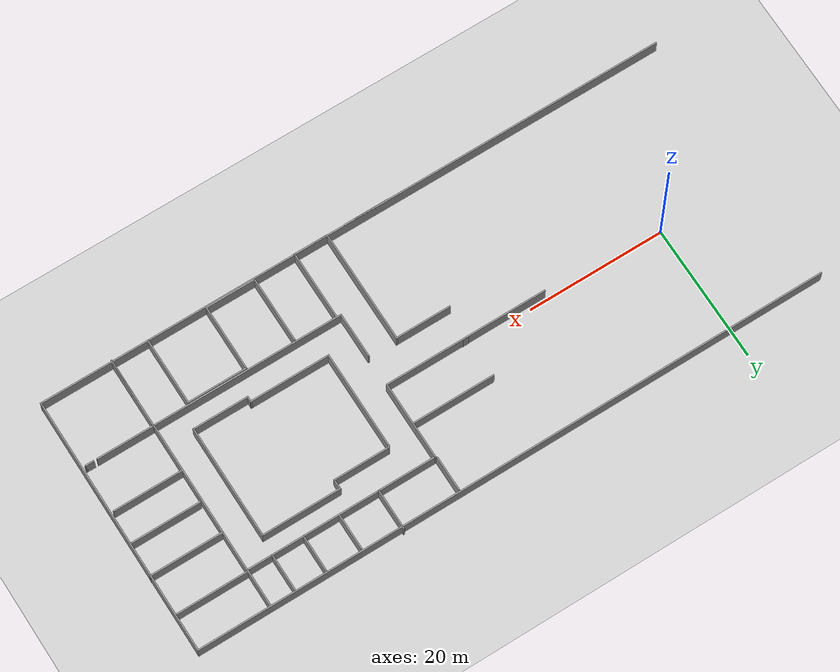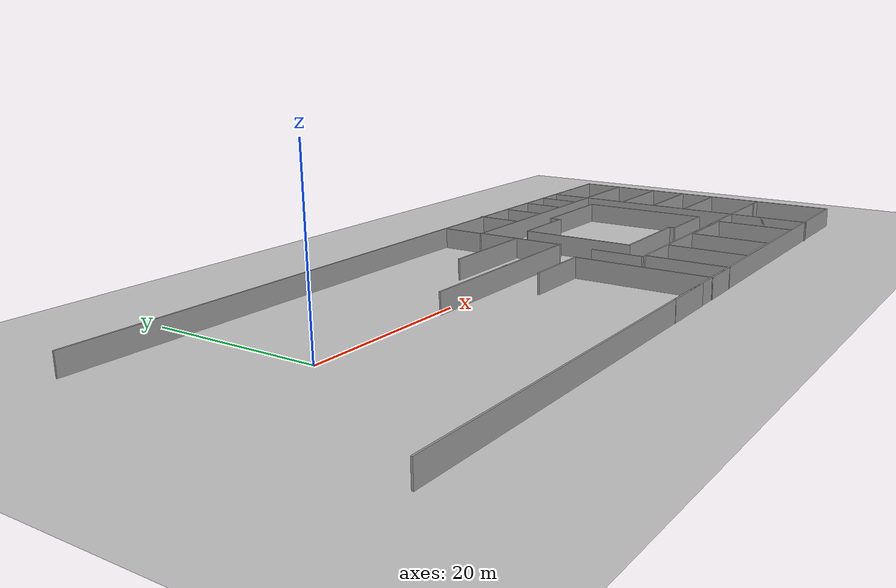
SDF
<sdf version="1.4">
 <world name="default">
  <model name="ground_plane">
   <static>1</static>
   <link name="link">
    <collision name="collision">
     <geometry><plane><normal>0 0 1</normal><size>100 100</size></plane></geometry>
     <surface><friction><ode><mu>100</mu><mu2>50</mu2></ode></friction></surface>
    </collision>
    <visual name="visual">
     <cast_shadows>0</cast_shadows>
     <geometry><plane><normal>0 0 1</normal><size>100 100</size></plane></geometry>
     <material>
      <script><uri>file://media/materials/scripts/gazebo.material</uri><name>Gazebo/Grey</name></script>
     </material>
    </visual>
    <velocity_decay><linear>0</linear><angular>0</angular></velocity_decay>
   </link>
  </model>
  <model name="whittemore6fl">
   <link name="Wall_107">
    <collision name="Wall_107_Collision">
     <geometry><box><size>5.19621 0.2 2.5</size></box></geometry>
     <pose>0 0 1.25 0 -0 0</pose>
    </collision>
    <visual name="Wall_107_Visual">
     <pose>0 0 1.25 0 -0 0</pose>
     <geometry><box><size>5.19621 0.2 2.5</size></box></geometry>
     <material>
      <script><uri>file://media/materials/scripts/gazebo.material</uri><name>Gazebo/Grey</name></script>
     </material>
    </visual>
    <velocity_decay><linear>0</linear><angular>0</angular></velocity_decay>
    <pose>32.9893 13.8078 0 0 -0 1.5708</pose>
   </link>
   <link name="Wall_110">
    <collision name="Wall_110_Collision">
     <geometry><box><size>0.847657 0.2 2.5</size></box></geometry>
     <pose>0 0 1.25 0 -0 0</pose>
    </collision>
    <visual name="Wall_110_Visual">
     <pose>0 0 1.25 0 -0 0</pose>
     <geometry><box><size>0.847657 0.2 2.5</size></box></geometry>
     <material>
      <script><uri>file://media/materials/scripts/gazebo.material</uri><name>Gazebo/Grey</name></script>
     </material>
    </visual>
    <velocity_decay><linear>0</linear><angular>0</angular></velocity_decay>
    <pose>21.3777 -0.255643 0 0 -0 0</pose>
   </link>
   <link name="Wall_112">
    <collision name="Wall_112_Collision">
     <geometry><box><size>12.0429 0.2 2.5</size></box></geometry>
     <pose>0 0 1.25 0 -0 0</pose>
    </collision>
    <visual name="Wall_112_Visual">
     <pose>0 0 1.25 0 -0 0</pose>
     <geometry><box><size>12.0429 0.2 2.5</size></box></geometry>
     <material>
      <script><uri>file://media/materials/scripts/gazebo.material</uri><name>Gazebo/Grey</name></script>
     </material>
    </visual>
    <velocity_decay><linear>0</linear><angular>0</angular></velocity_decay>
    <pose>27.0679 5.85084 0 0 -0 3.14159</pose>
   </link>
   <link name="Wall_135">
    <collision name="Wall_135_Collision">
     <geometry><box><size>6.86161 0.2 2.5</size></box></geometry>
     <pose>0 0 1.25 0 -0 0</pose>
    </collision>
    <visual name="Wall_135_Visual">
     <pose>0 0 1.25 0 -0 0</pose>
     <geometry><box><size>6.86161 0.2 2.5</size></box></geometry>
     <material>
      <script><uri>file://media/materials/scripts/gazebo.material</uri><name>Gazebo/Grey</name></script>
     </material>
    </visual>
    <velocity_decay><linear>0</linear><angular>0</angular></velocity_decay>
    <pose>22.7617 -21.6193 0 0 -0 3.14159</pose>
   </link>
   <link name="Wall_138">
    <collision name="Wall_138_Collision">
     <geometry><box><size>8.15693 0.2 2.5</size></box></geometry>
     <pose>0 0 1.25 0 -0 0</pose>
    </collision>
    <visual name="Wall_138_Visual">
     <pose>0 0 1.25 0 -0 0</pose>
     <geometry><box><size>8.15693 0.2 2.5</size></box></geometry>
     <material>
      <script><uri>file://media/materials/scripts/gazebo.material</uri><name>Gazebo/Grey</name></script>
     </material>
    </visual>
    <velocity_decay><linear>0</linear><angular>0</angular></velocity_decay>
    <pose>24.7972 -4.96531 0 0 -0 0</pose>
   </link>
   <link name="Wall_139">
    <collision name="Wall_139_Collision">
     <geometry><box><size>16.854 0.2 2.5</size></box></geometry>
     <pose>0 0 1.25 0 -0 0</pose>
    </collision>
    <visual name="Wall_139_Visual">
     <pose>0 0 1.25 0 -0 0</pose>
     <geometry><box><size>16.854 0.2 2.5</size></box></geometry>
     <material>
      <script><uri>file://media/materials/scripts/gazebo.material</uri><name>Gazebo/Grey</name></script>
     </material>
    </visual>
    <velocity_decay><linear>0</linear><angular>0</angular></velocity_decay>
    <pose>28.7757 -13.2923 0 0 0 -1.5708</pose>
   </link>
   <link name="Wall_140">
    <collision name="Wall_140_Collision">
     <geometry><box><size>5.10369 0.2 2.5</size></box></geometry>
     <pose>0 0 1.25 0 -0 0</pose>
    </collision>
    <visual name="Wall_140_Visual">
     <pose>0 0 1.25 0 -0 0</pose>
     <geometry><box><size>5.10369 0.2 2.5</size></box></geometry>
     <material>
      <script><uri>file://media/materials/scripts/gazebo.material</uri><name>Gazebo/Grey</name></script>
     </material>
    </visual>
    <velocity_decay><linear>0</linear><angular>0</angular></velocity_decay>
    <pose>31.2275 -21.6193 0 0 -0 0</pose>
   </link>
   <link name="Wall_141">
    <collision name="Wall_141_Collision">
     <geometry><box><size>10.1924 0.2 2.5</size></box></geometry>
     <pose>0 0 1.25 0 -0 0</pose>
    </collision>
    <visual name="Wall_141_Visual">
     <pose>0 0 1.25 0 -0 0</pose>
     <geometry><box><size>10.1924 0.2 2.5</size></box></geometry>
     <material>
      <script><uri>file://media/materials/scripts/gazebo.material</uri><name>Gazebo/Grey</name></script>
     </material>
    </visual>
    <velocity_decay><linear>0</linear><angular>0</angular></velocity_decay>
    <pose>33.6794 -16.6231 0 0 -0 1.5708</pose>
   </link>
   <link name="Wall_142">
    <collision name="Wall_142_Collision">
     <geometry><box><size>0.21 0.2 2.5</size></box></geometry>
     <pose>0 0 1.25 0 -0 0</pose>
    </collision>
    <visual name="Wall_142_Visual">
     <pose>0 0 1.25 0 -0 0</pose>
     <geometry><box><size>0.21 0.2 2.5</size></box></geometry>
     <material>
      <script><uri>file://media/materials/scripts/gazebo.material</uri><name>Gazebo/Grey</name></script>
     </material>
    </visual>
    <velocity_decay><linear>0</linear><angular>0</angular></velocity_decay>
    <pose>33.6844 -11.6269 0 0 -0 0</pose>
   </link>
   <link name="Wall_144">
    <collision name="Wall_144_Collision">
     <geometry><box><size>10.022 0.2 2.5</size></box></geometry>
     <pose>0 0 1.25 0 -0 0</pose>
    </collision>
    <visual name="Wall_144_Visual">
     <pose>0 0 1.25 0 -0 0</pose>
     <geometry><box><size>10.022 0.2 2.5</size></box></geometry>
     <material>
      <script><uri>file://media/materials/scripts/gazebo.material</uri><name>Gazebo/Grey</name></script>
     </material>
    </visual>
    <velocity_decay><linear>0</linear><angular>0</angular></velocity_decay>
    <pose>60.8642 -16.8211 0 0 0 -1.5708</pose>
   </link>
   <link name="Wall_145">
    <collision name="Wall_145_Collision">
     <geometry><box><size>10.5209 0.2 2.5</size></box></geometry>
     <pose>0 0 1.25 0 -0 0</pose>
    </collision>
    <visual name="Wall_145_Visual">
     <pose>0 0 1.25 0 -0 0</pose>
     <geometry><box><size>10.5209 0.2 2.5</size></box></geometry>
     <material>
      <script><uri>file://media/materials/scripts/gazebo.material</uri><name>Gazebo/Grey</name></script>
     </material>
    </visual>
    <velocity_decay><linear>0</linear><angular>0</angular></velocity_decay>
    <pose>60.8642 -16.5717 0 0 -0 1.5708</pose>
   </link>
   <link name="Wall_146">
    <collision name="Wall_146_Collision">
     <geometry><box><size>8.40067 0.2 2.5</size></box></geometry>
     <pose>0 0 1.25 0 -0 0</pose>
    </collision>
    <visual name="Wall_146_Visual">
     <pose>0 0 1.25 0 -0 0</pose>
     <geometry><box><size>8.40067 0.2 2.5</size></box></geometry>
     <material>
      <script><uri>file://media/materials/scripts/gazebo.material</uri><name>Gazebo/Grey</name></script>
     </material>
    </visual>
    <velocity_decay><linear>0</linear><angular>0</angular></velocity_decay>
    <pose>64.9645 -11.4113 0 0 -0 0</pose>
   </link>
   <link name="Wall_167">
    <collision name="Wall_167_Collision">
     <geometry><box><size>1.32572 0.2 2.5</size></box></geometry>
     <pose>0 0 1.25 0 -0 0</pose>
    </collision>
    <visual name="Wall_167_Visual">
     <pose>0 0 1.25 0 -0 0</pose>
     <geometry><box><size>1.32572 0.2 2.5</size></box></geometry>
     <material>
      <script><uri>file://media/materials/scripts/gazebo.material</uri><name>Gazebo/Grey</name></script>
     </material>
    </visual>
    <velocity_decay><linear>0</linear><angular>0</angular></velocity_decay>
    <pose>70.2163 -11.4341 0 0 -0 0</pose>
   </link>
   <link name="Wall_168">
    <collision name="Wall_168_Collision">
     <geometry><box><size>0.21 0.2 2.5</size></box></geometry>
     <pose>0 0 1.25 0 -0 0</pose>
    </collision>
    <visual name="Wall_168_Visual">
     <pose>0 0 1.25 0 -0 0</pose>
     <geometry><box><size>0.21 0.2 2.5</size></box></geometry>
     <material>
      <script><uri>file://media/materials/scripts/gazebo.material</uri><name>Gazebo/Grey</name></script>
     </material>
    </visual>
    <velocity_decay><linear>0</linear><angular>0</angular></velocity_decay>
    <pose>70.7842 -11.4341 0 0 -0 0</pose>
   </link>
   <link name="Wall_170">
    <collision name="Wall_170_Collision">
     <geometry><box><size>9.90934 0.2 2.5</size></box></geometry>
     <pose>0 0 1.25 0 -0 0</pose>
    </collision>
    <visual name="Wall_170_Visual">
     <pose>0 0 1.25 0 -0 0</pose>
     <geometry><box><size>9.90934 0.2 2.5</size></box></geometry>
     <material>
      <script><uri>file://media/materials/scripts/gazebo.material</uri><name>Gazebo/Grey</name></script>
     </material>
    </visual>
    <velocity_decay><linear>0</linear><angular>0</angular></velocity_decay>
    <pose>39.8219 -16.5702 0 0 0 -1.5708</pose>
   </link>
   <link name="Wall_171">
    <collision name="Wall_171_Collision">
     <geometry><box><size>7.37647 0.2 2.5</size></box></geometry>
     <pose>0 0 1.25 0 -0 0</pose>
    </collision>
    <visual name="Wall_171_Visual">
     <pose>0 0 1.25 0 -0 0</pose>
     <geometry><box><size>7.37647 0.2 2.5</size></box></geometry>
     <material>
      <script><uri>file://media/materials/scripts/gazebo.material</uri><name>Gazebo/Grey</name></script>
     </material>
    </visual>
    <velocity_decay><linear>0</linear><angular>0</angular></velocity_decay>
    <pose>43.4101 -21.4249 0 0 -0 0</pose>
   </link>
   <link name="Wall_172">
    <collision name="Wall_172_Collision">
     <geometry><box><size>9.90934 0.2 2.5</size></box></geometry>
     <pose>0 0 1.25 0 -0 0</pose>
    </collision>
    <visual name="Wall_172_Visual">
     <pose>0 0 1.25 0 -0 0</pose>
     <geometry><box><size>9.90934 0.2 2.5</size></box></geometry>
     <material>
      <script><uri>file://media/materials/scripts/gazebo.material</uri><name>Gazebo/Grey</name></script>
     </material>
    </visual>
    <velocity_decay><linear>0</linear><angular>0</angular></velocity_decay>
    <pose>46.9983 -16.5702 0 0 -0 1.5708</pose>
   </link>
   <link name="Wall_173">
    <collision name="Wall_173_Collision">
     <geometry><box><size>8.78362 0.2 2.5</size></box></geometry>
     <pose>0 0 1.25 0 -0 0</pose>
    </collision>
    <visual name="Wall_173_Visual">
     <pose>0 0 1.25 0 -0 0</pose>
     <geometry><box><size>8.78362 0.2 2.5</size></box></geometry>
     <material>
      <script><uri>file://media/materials/scripts/gazebo.material</uri><name>Gazebo/Grey</name></script>
     </material>
    </visual>
    <velocity_decay><linear>0</linear><angular>0</angular></velocity_decay>
    <pose>51.2902 -11.7156 0 0 -0 0</pose>
   </link>
   <link name="Wall_174">
    <collision name="Wall_174_Collision">
     <geometry><box><size>10.0501 0.2 2.5</size></box></geometry>
     <pose>0 0 1.25 0 -0 0</pose>
    </collision>
    <visual name="Wall_174_Visual">
     <pose>0 0 1.25 0 -0 0</pose>
     <geometry><box><size>10.0501 0.2 2.5</size></box></geometry>
     <material>
      <script><uri>file://media/materials/scripts/gazebo.material</uri><name>Gazebo/Grey</name></script>
     </material>
    </visual>
    <velocity_decay><linear>0</linear><angular>0</angular></velocity_decay>
    <pose>55.582 -16.6406 0 0 0 -1.5708</pose>
   </link>
   <link name="Wall_180">
    <collision name="Wall_180_Collision">
     <geometry><box><size>93.1907 0.2 2.5</size></box></geometry>
     <pose>0 0 1.25 0 -0 0</pose>
    </collision>
    <visual name="Wall_180_Visual">
     <pose>0 0 1.25 0 -0 0</pose>
     <geometry><box><size>93.1907 0.2 2.5</size></box></geometry>
     <material>
      <script><uri>file://media/materials/scripts/gazebo.material</uri><name>Gazebo/Grey</name></script>
     </material>
    </visual>
    <velocity_decay><linear>0</linear><angular>0</angular></velocity_decay>
    <pose>24.8126 16.6168 0 0 -0 0</pose>
   </link>
   <link name="Wall_181">
    <collision name="Wall_181_Collision">
     <geometry><box><size>38.1483 0.2 2.5</size></box></geometry>
     <pose>0 0 1.25 0 -0 0</pose>
    </collision>
    <visual name="Wall_181_Visual">
     <pose>0 0 1.25 0 -0 0</pose>
     <geometry><box><size>38.1483 0.2 2.5</size></box></geometry>
     <material>
      <script><uri>file://media/materials/scripts/gazebo.material</uri><name>Gazebo/Grey</name></script>
     </material>
    </visual>
    <velocity_decay><linear>0</linear><angular>0</angular></velocity_decay>
    <pose>71.308 -2.35737 0 0 0 -1.5708</pose>
   </link>
   <link name="Wall_182">
    <collision name="Wall_182_Collision">
     <geometry><box><size>0.444722 0.2 2.5</size></box></geometry>
     <pose>0 0 1.25 0 -0 0</pose>
    </collision>
    <visual name="Wall_182_Visual">
     <pose>0 0 1.25 0 -0 0</pose>
     <geometry><box><size>0.444722 0.2 2.5</size></box></geometry>
     <material>
      <script><uri>file://media/materials/scripts/gazebo.material</uri><name>Gazebo/Grey</name></script>
     </material>
    </visual>
    <velocity_decay><linear>0</linear><angular>0</angular></velocity_decay>
    <pose>71.308 -21.4539 0 0 0 -1.5708</pose>
   </link>
   <link name="Wall_183">
    <collision name="Wall_183_Collision">
     <geometry><box><size>93.2461 0.2 2.5</size></box></geometry>
     <pose>0 0 1.25 0 -0 0</pose>
    </collision>
    <visual name="Wall_183_Visual">
     <pose>0 0 1.25 0 -0 0</pose>
     <geometry><box><size>93.2461 0.2 2.5</size></box></geometry>
     <material>
      <script><uri>file://media/materials/scripts/gazebo.material</uri><name>Gazebo/Grey</name></script>
     </material>
    </visual>
    <velocity_decay><linear>0</linear><angular>0</angular></velocity_decay>
    <pose>24.7849 -21.5762 0 0 -0 3.14159</pose>
   </link>
   <link name="Wall_187">
    <collision name="Wall_187_Collision">
     <geometry><box><size>5.94564 0.2 2.5</size></box></geometry>
     <pose>0 0 1.25 0 -0 0</pose>
    </collision>
    <visual name="Wall_187_Visual">
     <pose>0 0 1.25 0 -0 0</pose>
     <geometry><box><size>5.94564 0.2 2.5</size></box></geometry>
     <material>
      <script><uri>file://media/materials/scripts/gazebo.material</uri><name>Gazebo/Grey</name></script>
     </material>
    </visual>
    <velocity_decay><linear>0</linear><angular>0</angular></velocity_decay>
    <pose>41.515 14.0251 0 0 0 -1.5708</pose>
   </link>
   <link name="Wall_189">
    <collision name="Wall_189_Collision">
     <geometry><box><size>5.20084 0.2 2.5</size></box></geometry>
     <pose>0 0 1.25 0 -0 0</pose>
    </collision>
    <visual name="Wall_189_Visual">
     <pose>0 0 1.25 0 -0 0</pose>
     <geometry><box><size>5.20084 0.2 2.5</size></box></geometry>
     <material>
      <script><uri>file://media/materials/scripts/gazebo.material</uri><name>Gazebo/Grey</name></script>
     </material>
    </visual>
    <velocity_decay><linear>0</linear><angular>0</angular></velocity_decay>
    <pose>47.367 13.7591 0 0 0 -1.5708</pose>
   </link>
   <link name="Wall_191">
    <collision name="Wall_191_Collision">
     <geometry><box><size>5.41364 0.2 2.5</size></box></geometry>
     <pose>0 0 1.25 0 -0 0</pose>
    </collision>
    <visual name="Wall_191_Visual">
     <pose>0 0 1.25 0 -0 0</pose>
     <geometry><box><size>5.41364 0.2 2.5</size></box></geometry>
     <material>
      <script><uri>file://media/materials/scripts/gazebo.material</uri><name>Gazebo/Grey</name></script>
     </material>
    </visual>
    <velocity_decay><linear>0</linear><angular>0</angular></velocity_decay>
    <pose>52.5807 13.7591 0 0 0 -1.5708</pose>
   </link>
   <link name="Wall_193">
    <collision name="Wall_193_Collision">
     <geometry><box><size>5.62644 0.2 2.5</size></box></geometry>
     <pose>0 0 1.25 0 -0 0</pose>
    </collision>
    <visual name="Wall_193_Visual">
     <pose>0 0 1.25 0 -0 0</pose>
     <geometry><box><size>5.62644 0.2 2.5</size></box></geometry>
     <material>
      <script><uri>file://media/materials/scripts/gazebo.material</uri><name>Gazebo/Grey</name></script>
     </material>
    </visual>
    <velocity_decay><linear>0</linear><angular>0</angular></velocity_decay>
    <pose>57.1559 13.8655 0 0 0 -1.5708</pose>
   </link>
   <link name="Wall_195">
    <collision name="Wall_195_Collision">
     <geometry><box><size>5.52004 0.2 2.5</size></box></geometry>
     <pose>0 0 1.25 0 -0 0</pose>
    </collision>
    <visual name="Wall_195_Visual">
     <pose>0 0 1.25 0 -0 0</pose>
     <geometry><box><size>5.52004 0.2 2.5</size></box></geometry>
     <material>
      <script><uri>file://media/materials/scripts/gazebo.material</uri><name>Gazebo/Grey</name></script>
     </material>
    </visual>
    <velocity_decay><linear>0</linear><angular>0</angular></velocity_decay>
    <pose>60.7735 13.8123 0 0 0 -1.5708</pose>
   </link>
   <link name="Wall_197">
    <collision name="Wall_197_Collision">
     <geometry><box><size>10.356 0.2 2.5</size></box></geometry>
     <pose>0 0 1.25 0 -0 0</pose>
    </collision>
    <visual name="Wall_197_Visual">
     <pose>0 0 1.25 0 -0 0</pose>
     <geometry><box><size>10.356 0.2 2.5</size></box></geometry>
     <material>
      <script><uri>file://media/materials/scripts/gazebo.material</uri><name>Gazebo/Grey</name></script>
     </material>
    </visual>
    <velocity_decay><linear>0</linear><angular>0</angular></velocity_decay>
    <pose>66.01 11.2612 0 0 -0 0</pose>
   </link>
   <link name="Wall_199">
    <collision name="Wall_199_Collision">
     <geometry><box><size>10.6007 0.2 2.5</size></box></geometry>
     <pose>0 0 1.25 0 -0 0</pose>
    </collision>
    <visual name="Wall_199_Visual">
     <pose>0 0 1.25 0 -0 0</pose>
     <geometry><box><size>10.6007 0.2 2.5</size></box></geometry>
     <material>
      <script><uri>file://media/materials/scripts/gazebo.material</uri><name>Gazebo/Grey</name></script>
     </material>
    </visual>
    <velocity_decay><linear>0</linear><angular>0</angular></velocity_decay>
    <pose>66.1323 5.26555 0 0 -0 0</pose>
   </link>
   <link name="Wall_201">
    <collision name="Wall_201_Collision">
     <geometry><box><size>10.1112 0.2 2.5</size></box></geometry>
     <pose>0 0 1.25 0 -0 0</pose>
    </collision>
    <visual name="Wall_201_Visual">
     <pose>0 0 1.25 0 -0 0</pose>
     <geometry><box><size>10.1112 0.2 2.5</size></box></geometry>
     <material>
      <script><uri>file://media/materials/scripts/gazebo.material</uri><name>Gazebo/Grey</name></script>
     </material>
    </visual>
    <velocity_decay><linear>0</linear><angular>0</angular></velocity_decay>
    <pose>66.1323 0.371114 0 0 -0 0</pose>
   </link>
   <link name="Wall_203">
    <collision name="Wall_203_Collision">
     <geometry><box><size>10.1112 0.2 2.5</size></box></geometry>
     <pose>0 0 1.25 0 -0 0</pose>
    </collision>
    <visual name="Wall_203_Visual">
     <pose>0 0 1.25 0 -0 0</pose>
     <geometry><box><size>10.1112 0.2 2.5</size></box></geometry>
     <material>
      <script><uri>file://media/materials/scripts/gazebo.material</uri><name>Gazebo/Grey</name></script>
     </material>
    </visual>
    <velocity_decay><linear>0</linear><angular>0</angular></velocity_decay>
    <pose>65.8876 -4.40096 0 0 -0 0</pose>
   </link>
   <link name="Wall_21">
    <collision name="Wall_21_Collision">
     <geometry><box><size>23.9498 0.2 2.5</size></box></geometry>
     <pose>0 0 1.25 0 -0 0</pose>
    </collision>
    <visual name="Wall_21_Visual">
     <pose>0 0 1.25 0 -0 0</pose>
     <geometry><box><size>23.9498 0.2 2.5</size></box></geometry>
     <material>
      <script><uri>file://media/materials/scripts/gazebo.material</uri><name>Gazebo/Grey</name></script>
     </material>
    </visual>
    <velocity_decay><linear>0</linear><angular>0</angular></velocity_decay>
    <pose>21.2894 -0.302356 0 0 -0 0</pose>
   </link>
   <link name="Wall_22">
    <collision name="Wall_22_Collision">
     <geometry><box><size>11.5827 0.2 2.5</size></box></geometry>
     <pose>0 0 1.25 0 -0 0</pose>
    </collision>
    <visual name="Wall_22_Visual">
     <pose>0 0 1.25 0 -0 0</pose>
     <geometry><box><size>11.5827 0.2 2.5</size></box></geometry>
     <material>
      <script><uri>file://media/materials/scripts/gazebo.material</uri><name>Gazebo/Grey</name></script>
     </material>
    </visual>
    <velocity_decay><linear>0</linear><angular>0</angular></velocity_decay>
    <pose>33.1643 5.38897 0 0 -0 1.5708</pose>
   </link>
   <link name="Wall_23">
    <collision name="Wall_23_Collision">
     <geometry><box><size>27.8574 0.2 2.5</size></box></geometry>
     <pose>0 0 1.25 0 -0 0</pose>
    </collision>
    <visual name="Wall_23_Visual">
     <pose>0 0 1.25 0 -0 0</pose>
     <geometry><box><size>27.8574 0.2 2.5</size></box></geometry>
     <material>
      <script><uri>file://media/materials/scripts/gazebo.material</uri><name>Gazebo/Grey</name></script>
     </material>
    </visual>
    <velocity_decay><linear>0</linear><angular>0</angular></velocity_decay>
    <pose>46.993 11.0803 0 0 -0 0</pose>
   </link>
   <link name="Wall_24">
    <collision name="Wall_24_Collision">
     <geometry><box><size>22.7063 0.2 2.5</size></box></geometry>
     <pose>0 0 1.25 0 -0 0</pose>
    </collision>
    <visual name="Wall_24_Visual">
     <pose>0 0 1.25 0 -0 0</pose>
     <geometry><box><size>22.7063 0.2 2.5</size></box></geometry>
     <material>
      <script><uri>file://media/materials/scripts/gazebo.material</uri><name>Gazebo/Grey</name></script>
     </material>
    </visual>
    <velocity_decay><linear>0</linear><angular>0</angular></velocity_decay>
    <pose>60.8217 -0.172841 0 0 0 -1.5708</pose>
   </link>
   <link name="Wall_25">
    <collision name="Wall_25_Collision">
     <geometry><box><size>27.9641 0.2 2.5</size></box></geometry>
     <pose>0 0 1.25 0 -0 0</pose>
    </collision>
    <visual name="Wall_25_Visual">
     <pose>0 0 1.25 0 -0 0</pose>
     <geometry><box><size>27.9641 0.2 2.5</size></box></geometry>
     <material>
      <script><uri>file://media/materials/scripts/gazebo.material</uri><name>Gazebo/Grey</name></script>
     </material>
    </visual>
    <velocity_decay><linear>0</linear><angular>0</angular></velocity_decay>
    <pose>46.9397 -11.426 0 0 -0 3.14159</pose>
   </link>
   <link name="Wall_26">
    <collision name="Wall_26_Collision">
     <geometry><box><size>6.76437 0.2 2.5</size></box></geometry>
     <pose>0 0 1.25 0 -0 0</pose>
    </collision>
    <visual name="Wall_26_Visual">
     <pose>0 0 1.25 0 -0 0</pose>
     <geometry><box><size>6.76437 0.2 2.5</size></box></geometry>
     <material>
      <script><uri>file://media/materials/scripts/gazebo.material</uri><name>Gazebo/Grey</name></script>
     </material>
    </visual>
    <velocity_decay><linear>0</linear><angular>0</angular></velocity_decay>
    <pose>33.0577 -8.1438 0 0 -0 1.5708</pose>
   </link>
   <link name="Wall_59">
    <collision name="Wall_59_Collision">
     <geometry><box><size>14.5162 0.2 2.5</size></box></geometry>
     <pose>0 0 1.25 0 -0 0</pose>
    </collision>
    <visual name="Wall_59_Visual">
     <pose>0 0 1.25 0 -0 0</pose>
     <geometry><box><size>14.5162 0.2 2.5</size></box></geometry>
     <material>
      <script><uri>file://media/materials/scripts/gazebo.material</uri><name>Gazebo/Grey</name></script>
     </material>
    </visual>
    <velocity_decay><linear>0</linear><angular>0</angular></velocity_decay>
    <pose>37.3029 -0.446226 0 0 0 -1.5708</pose>
   </link>
   <link name="Wall_60">
    <collision name="Wall_60_Collision">
     <geometry><box><size>11.7502 0.2 2.5</size></box></geometry>
     <pose>0 0 1.25 0 -0 0</pose>
    </collision>
    <visual name="Wall_60_Visual">
     <pose>0 0 1.25 0 -0 0</pose>
     <geometry><box><size>11.7502 0.2 2.5</size></box></geometry>
     <material>
      <script><uri>file://media/materials/scripts/gazebo.material</uri><name>Gazebo/Grey</name></script>
     </material>
    </visual>
    <velocity_decay><linear>0</linear><angular>0</angular></velocity_decay>
    <pose>43.078 -7.60434 0 0 -0 0</pose>
   </link>
   <link name="Wall_61">
    <collision name="Wall_61_Collision">
     <geometry><box><size>0.926711 0.2 2.5</size></box></geometry>
     <pose>0 0 1.25 0 -0 0</pose>
    </collision>
    <visual name="Wall_61_Visual">
     <pose>0 0 1.25 0 -0 0</pose>
     <geometry><box><size>0.926711 0.2 2.5</size></box></geometry>
     <material>
      <script><uri>file://media/materials/scripts/gazebo.material</uri><name>Gazebo/Grey</name></script>
     </material>
    </visual>
    <velocity_decay><linear>0</linear><angular>0</angular></velocity_decay>
    <pose>48.8531 -7.96769 0 0 0 -1.5708</pose>
   </link>
   <link name="Wall_62">
    <collision name="Wall_62_Collision">
     <geometry><box><size>8.18328 0.2 2.5</size></box></geometry>
     <pose>0 0 1.25 0 -0 0</pose>
    </collision>
    <visual name="Wall_62_Visual">
     <pose>0 0 1.25 0 -0 0</pose>
     <geometry><box><size>8.18328 0.2 2.5</size></box></geometry>
     <material>
      <script><uri>file://media/materials/scripts/gazebo.material</uri><name>Gazebo/Grey</name></script>
     </material>
    </visual>
    <velocity_decay><linear>0</linear><angular>0</angular></velocity_decay>
    <pose>52.8447 -8.33105 0 0 -0 0</pose>
   </link>
   <link name="Wall_63">
    <collision name="Wall_63_Collision">
     <geometry><box><size>16.7815 0.2 2.5</size></box></geometry>
     <pose>0 0 1.25 0 -0 0</pose>
    </collision>
    <visual name="Wall_63_Visual">
     <pose>0 0 1.25 0 -0 0</pose>
     <geometry><box><size>16.7815 0.2 2.5</size></box></geometry>
     <material>
      <script><uri>file://media/materials/scripts/gazebo.material</uri><name>Gazebo/Grey</name></script>
     </material>
    </visual>
    <velocity_decay><linear>0</linear><angular>0</angular></velocity_decay>
    <pose>56.8364 -0.040282 0 0 -0 1.5708</pose>
   </link>
   <link name="Wall_64">
    <collision name="Wall_64_Collision">
     <geometry><box><size>11.5849 0.2 2.5</size></box></geometry>
     <pose>0 0 1.25 0 -0 0</pose>
    </collision>
    <visual name="Wall_64_Visual">
     <pose>0 0 1.25 0 -0 0</pose>
     <geometry><box><size>11.5849 0.2 2.5</size></box></geometry>
     <material>
      <script><uri>file://media/materials/scripts/gazebo.material</uri><name>Gazebo/Grey</name></script>
     </material>
    </visual>
    <velocity_decay><linear>0</linear><angular>0</angular></velocity_decay>
    <pose>51.1439 8.25049 0 0 -0 3.14159</pose>
   </link>
   <link name="Wall_65">
    <collision name="Wall_65_Collision">
     <geometry><box><size>1.54903 0.2 2.5</size></box></geometry>
     <pose>0 0 1.25 0 -0 0</pose>
    </collision>
    <visual name="Wall_65_Visual">
     <pose>0 0 1.25 0 -0 0</pose>
     <geometry><box><size>1.54903 0.2 2.5</size></box></geometry>
     <material>
      <script><uri>file://media/materials/scripts/gazebo.material</uri><name>Gazebo/Grey</name></script>
     </material>
    </visual>
    <velocity_decay><linear>0</linear><angular>0</angular></velocity_decay>
    <pose>45.4515 7.57597 0 0 0 -1.5708</pose>
   </link>
   <link name="Wall_66">
    <collision name="Wall_66_Collision">
     <geometry><box><size>8.22048 0.2 2.5</size></box></geometry>
     <pose>0 0 1.25 0 -0 0</pose>
    </collision>
    <visual name="Wall_66_Visual">
     <pose>0 0 1.25 0 -0 0</pose>
     <geometry><box><size>8.22048 0.2 2.5</size></box></geometry>
     <material>
      <script><uri>file://media/materials/scripts/gazebo.material</uri><name>Gazebo/Grey</name></script>
     </material>
    </visual>
    <velocity_decay><linear>0</linear><angular>0</angular></velocity_decay>
    <pose>41.4412 6.90146 0 0 -0 3.14159</pose>
   </link>
   <link name="Wall_67">
    <collision name="Wall_67_Collision">
     <geometry><box><size>0.42878 0.2 2.5</size></box></geometry>
     <pose>0 0 1.25 0 -0 0</pose>
    </collision>
    <visual name="Wall_67_Visual">
     <pose>0 0 1.25 0 -0 0</pose>
     <geometry><box><size>0.42878 0.2 2.5</size></box></geometry>
     <material>
      <script><uri>file://media/materials/scripts/gazebo.material</uri><name>Gazebo/Grey</name></script>
     </material>
    </visual>
    <velocity_decay><linear>0</linear><angular>0</angular></velocity_decay>
    <pose>37.367 6.80667 0 0 0 -2.16495</pose>
   </link>
   <static>1</static>
   <pose>8.13828 -0.265407 0 0 -0 0</pose>
  </model>
 </world>
</sdf>
